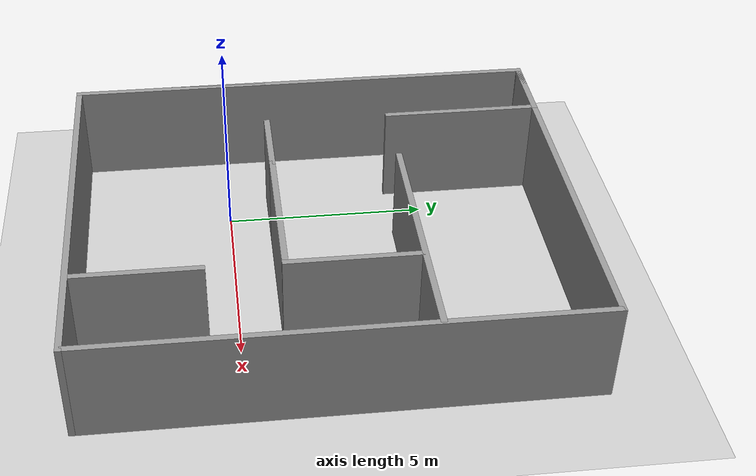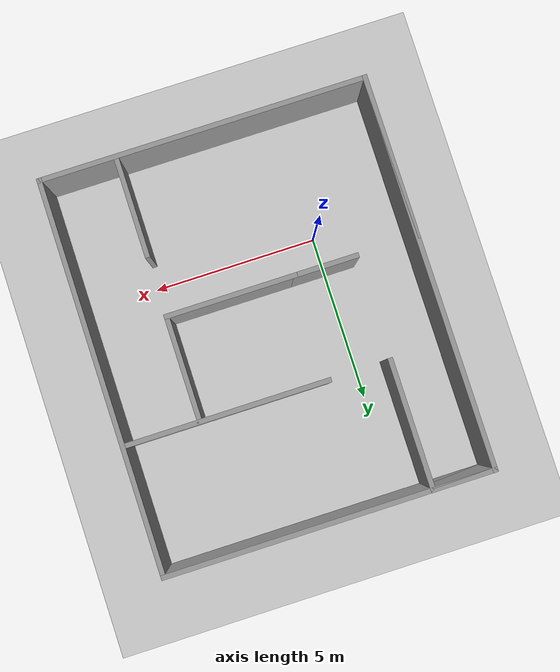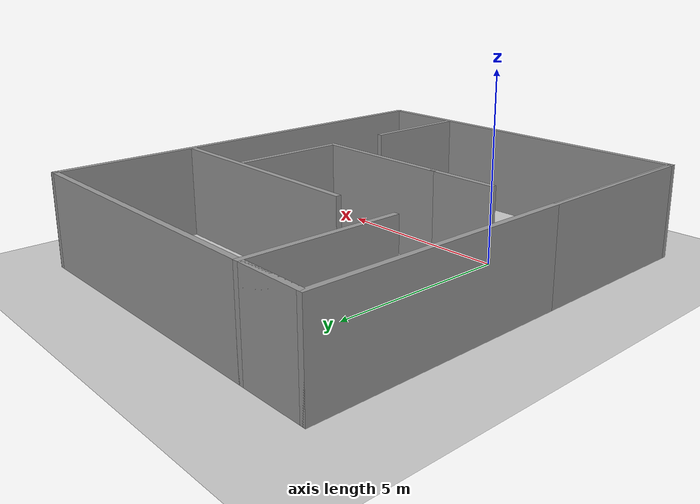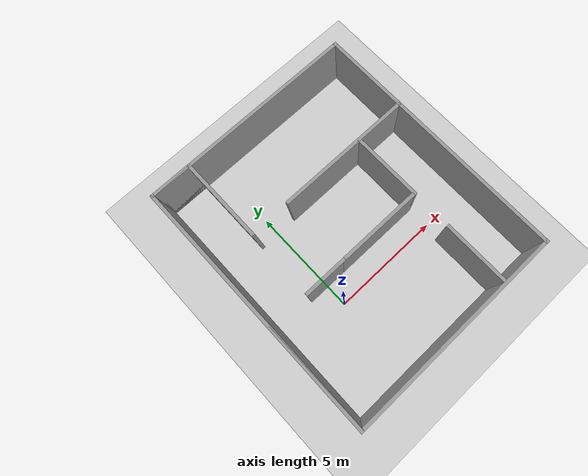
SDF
<sdf version="1.7">
 <world name="default">
  <plugin filename="gz-sim-physics-system" name="gz::sim::systems::Physics"/>
  <plugin filename="gz-sim-user-commands-system" name="gz::sim::systems::UserCommands"/>
  <plugin filename="gz-sim-scene-broadcaster-system" name="gz::sim::systems::SceneBroadcaster"/>
  <plugin filename="gz-sim-sensors-system" name="gz::sim::systems::Sensors">
   <render_engine>ogre2</render_engine>
  </plugin>
  <plugin filename="gz-sim-imu-system" name="gz::sim::systems::Imu"/>
  <light name="sun" type="directional">
   <pose>0 0 10 0 -0 0</pose>
   <diffuse>0.8 0.8 0.8 1</diffuse>
   <specular>0.2 0.2 0.2 1</specular>
   <attenuation>
    <range>1000</range>
    <constant>0.9</constant>
    <linear>0.01</linear>
    <quadratic>0.001</quadratic>
   </attenuation>
   <direction>-0.5 0.1 -0.9</direction>
   <spot><inner_angle>0</inner_angle><outer_angle>0</outer_angle><falloff>0</falloff></spot>
  </light>
  <model name="ground_plane">
   <static>1</static>
   <link name="link">
    <collision name="collision">
     <geometry><plane><normal>0 0 1</normal><size>100 100</size></plane></geometry>
     <surface>
      <contact><collide_bitmask>65535</collide_bitmask></contact>
      <friction><ode><mu>100</mu><mu2>50</mu2></ode></friction>
     </surface>
    </collision>
    <visual name="visual">
     <cast_shadows>0</cast_shadows>
     <geometry><plane><normal>0 0 1</normal><size>100 100</size></plane></geometry>
     <material>
      <script><uri>file://media/materials/scripts/gazebo.material</uri><name>Gazebo/Grey</name></script>
     </material>
    </visual>
   </link>
  </model>
  <gravity>0 0 -9.8</gravity>
  <magnetic_field>6e-06 2.3e-05 -4.2e-05</magnetic_field>
  <atmosphere type="adiabatic"/>
  <physics type="ode">
   <max_step_size>0.001</max_step_size>
   <real_time_factor>1</real_time_factor>
   <real_time_update_rate>1000</real_time_update_rate>
  </physics>
  <scene><ambient>0.4 0.4 0.4 1</ambient><background>0.7 0.7 0.7 1</background><shadows>1</shadows></scene>
  <audio><device>default</device></audio>
  <spherical_coordinates>
   <surface_model>EARTH_WGS84</surface_model>
   <latitude_deg>0</latitude_deg>
   <longitude_deg>0</longitude_deg>
   <elevation>0</elevation>
   <heading_deg>0</heading_deg>
  </spherical_coordinates>
  <model name="map">
   <pose>2.22143 2.15099 0 0 -0 0</pose>
   <link name="Wall_35">
    <collision name="Wall_35_Collision">
     <geometry><box><size>10 0.15 2.5</size></box></geometry>
     <pose>0 0 1.25 0 -0 0</pose>
    </collision>
    <visual name="Wall_35_Visual">
     <pose>0 0 1.25 0 -0 0</pose>
     <geometry><box><size>10 0.15 2.5</size></box></geometry>
     <material>
      <script><uri>file://media/materials/scripts/gazebo.material</uri><name>Gazebo/Grey</name></script>
      <ambient>1 1 1 1</ambient>
     </material>
     <meta><layer>0</layer></meta>
    </visual>
    <pose>0 5.925 0 0 -0 0</pose>
   </link>
   <link name="Wall_37">
    <collision name="Wall_37_Collision">
     <geometry><box><size>12 0.15 2.5</size></box></geometry>
     <pose>0 0 1.25 0 -0 0</pose>
    </collision>
    <visual name="Wall_37_Visual">
     <pose>0 0 1.25 0 -0 0</pose>
     <geometry><box><size>12 0.15 2.5</size></box></geometry>
     <material>
      <script><uri>file://media/materials/scripts/gazebo.material</uri><name>Gazebo/Grey</name></script>
      <ambient>1 1 1 1</ambient>
     </material>
     <meta><layer>0</layer></meta>
    </visual>
    <pose>4.925 0 0 0 -0 -1.5708</pose>
   </link>
   <link name="Wall_39">
    <collision name="Wall_39_Collision">
     <geometry><box><size>10 0.15 2.5</size></box></geometry>
     <pose>0 0 1.25 0 -0 0</pose>
    </collision>
    <visual name="Wall_39_Visual">
     <pose>0 0 1.25 0 -0 0</pose>
     <geometry><box><size>10 0.15 2.5</size></box></geometry>
     <material>
      <script><uri>file://media/materials/scripts/gazebo.material</uri><name>Gazebo/Grey</name></script>
      <ambient>1 1 1 1</ambient>
     </material>
     <meta><layer>0</layer></meta>
    </visual>
    <pose>0 -5.925 0 0 -0 3.14159</pose>
   </link>
   <link name="Wall_40">
    <collision name="Wall_40_Collision">
     <geometry><box><size>12 0.15 2.5</size></box></geometry>
     <pose>0 0 1.25 0 -0 0</pose>
    </collision>
    <visual name="Wall_40_Visual">
     <pose>0 0 1.25 0 -0 0</pose>
     <geometry><box><size>12 0.15 2.5</size></box></geometry>
     <material>
      <script><uri>file://media/materials/scripts/gazebo.material</uri><name>Gazebo/Grey</name></script>
      <ambient>1 1 1 1</ambient>
     </material>
     <meta><layer>0</layer></meta>
    </visual>
    <pose>-4.925 0 0 0 -0 1.5708</pose>
   </link>
   <link name="Wall_43">
    <collision name="Wall_43_Collision">
     <geometry><box><size>2 0.15 2.5</size></box></geometry>
     <pose>0 0 1.25 0 -0 0</pose>
    </collision>
    <visual name="Wall_43_Visual">
     <pose>0 0 1.25 0 -0 0</pose>
     <geometry><box><size>2 0.15 2.5</size></box></geometry>
     <material>
      <script><uri>file://media/materials/scripts/gazebo.material</uri><name>Gazebo/Grey</name></script>
      <ambient>1 1 1 1</ambient>
     </material>
     <meta><layer>0</layer></meta>
    </visual>
    <pose>-4 5.925 0 0 -0 0</pose>
   </link>
   <link name="Wall_44">
    <collision name="Wall_44_Collision">
     <geometry><box><size>4 0.15 2.5</size></box></geometry>
     <pose>0 0 1.25 0 -0 0</pose>
    </collision>
    <visual name="Wall_44_Visual">
     <pose>0 0 1.25 0 -0 0</pose>
     <geometry><box><size>4 0.15 2.5</size></box></geometry>
     <material>
      <script><uri>file://media/materials/scripts/gazebo.material</uri><name>Gazebo/Grey</name></script>
      <ambient>1 1 1 1</ambient>
     </material>
     <meta><layer>0</layer></meta>
    </visual>
    <pose>-3.075 4 0 0 -0 -1.5708</pose>
   </link>
   <link name="Wall_46">
    <collision name="Wall_46_Collision">
     <geometry><box><size>6.25 0.15 2.5</size></box></geometry>
     <pose>0 0 1.25 0 -0 0</pose>
    </collision>
    <visual name="Wall_46_Visual">
     <pose>0 0 1.25 0 -0 0</pose>
     <geometry><box><size>6.25 0.15 2.5</size></box></geometry>
     <material>
      <script><uri>file://media/materials/scripts/gazebo.material</uri><name>Gazebo/Grey</name></script>
      <ambient>1 1 1 1</ambient>
     </material>
     <meta><layer>0</layer></meta>
    </visual>
    <pose>1.825 2.075 0 0 -0 0</pose>
   </link>
   <link name="Wall_48">
    <collision name="Wall_48_Collision">
     <geometry><box><size>5 0.15 2.5</size></box></geometry>
     <pose>0 0 1.25 0 -0 0</pose>
    </collision>
    <visual name="Wall_48_Visual">
     <pose>0 0 1.25 0 -0 0</pose>
     <geometry><box><size>5 0.15 2.5</size></box></geometry>
     <material>
      <script><uri>file://media/materials/scripts/gazebo.material</uri><name>Gazebo/Grey</name></script>
      <ambient>1 1 1 1</ambient>
     </material>
     <meta><layer>0</layer></meta>
    </visual>
    <pose>-4.925 -3.5 0 0 -0 1.5708</pose>
   </link>
   <link name="Wall_50">
    <collision name="Wall_50_Collision">
     <geometry><box><size>2 0.15 2.5</size></box></geometry>
     <pose>0 0 1.25 0 -0 0</pose>
    </collision>
    <visual name="Wall_50_Visual">
     <pose>0 0 1.25 0 -0 0</pose>
     <geometry><box><size>2 0.15 2.5</size></box></geometry>
     <material>
      <script><uri>file://media/materials/scripts/gazebo.material</uri><name>Gazebo/Grey</name></script>
      <ambient>1 1 1 1</ambient>
     </material>
     <meta><layer>0</layer></meta>
    </visual>
    <pose>-2.15 -1.075 0 0 -0 0</pose>
   </link>
   <link name="Wall_51">
    <collision name="Wall_51_Collision">
     <geometry><box><size>4 0.15 2.5</size></box></geometry>
     <pose>0 0 1.25 0 -0 0</pose>
    </collision>
    <visual name="Wall_51_Visual">
     <pose>0 0 1.25 0 -0 0</pose>
     <geometry><box><size>4 0.15 2.5</size></box></geometry>
     <material>
      <script><uri>file://media/materials/scripts/gazebo.material</uri><name>Gazebo/Grey</name></script>
      <ambient>1 1 1 1</ambient>
     </material>
     <meta><layer>0</layer></meta>
    </visual>
    <pose>0.7 -1.075 0 0 -0 0</pose>
   </link>
   <link name="Wall_52">
    <collision name="Wall_52_Collision">
     <geometry><box><size>3.25 0.15 2.5</size></box></geometry>
     <pose>0 0 1.25 0 -0 0</pose>
    </collision>
    <visual name="Wall_52_Visual">
     <pose>0 0 1.25 0 -0 0</pose>
     <geometry><box><size>3.25 0.15 2.5</size></box></geometry>
     <material>
      <script><uri>file://media/materials/scripts/gazebo.material</uri><name>Gazebo/Grey</name></script>
      <ambient>1 1 1 1</ambient>
     </material>
     <meta><layer>0</layer></meta>
    </visual>
    <pose>2.625 0.475 0 0 -0 1.5708</pose>
   </link>
   <link name="Wall_55">
    <collision name="Wall_55_Collision">
     <geometry><box><size>3 0.15 2.5</size></box></geometry>
     <pose>0 0 1.25 0 -0 0</pose>
    </collision>
    <visual name="Wall_55_Visual">
     <pose>0 0 1.25 0 -0 0</pose>
     <geometry><box><size>3 0.15 2.5</size></box></geometry>
     <material>
      <script><uri>file://media/materials/scripts/gazebo.material</uri><name>Gazebo/Grey</name></script>
      <ambient>1 1 1 1</ambient>
     </material>
     <meta><layer>0</layer></meta>
    </visual>
    <pose>2.625 -4.35 0 0 -0 -1.5708</pose>
   </link>
   <static>1</static>
  </model>
 </world>
</sdf>
